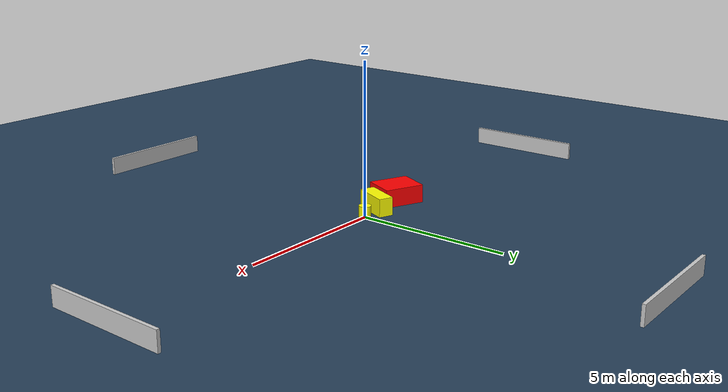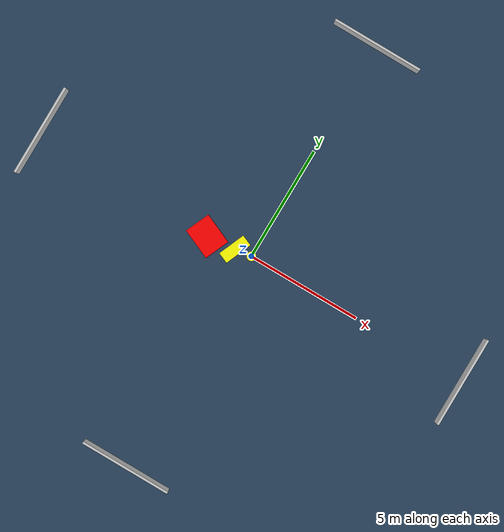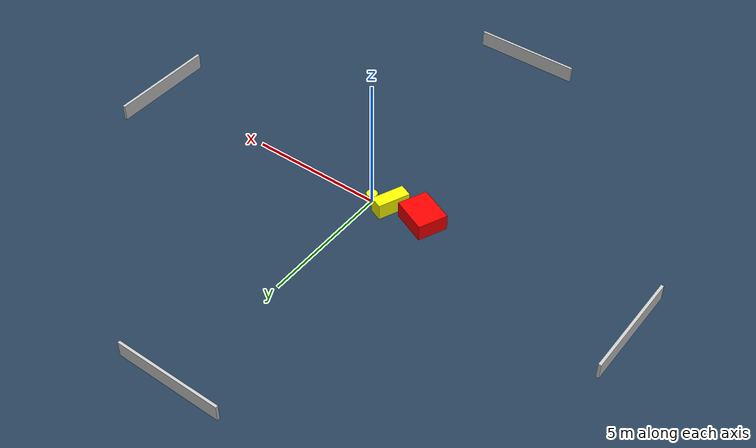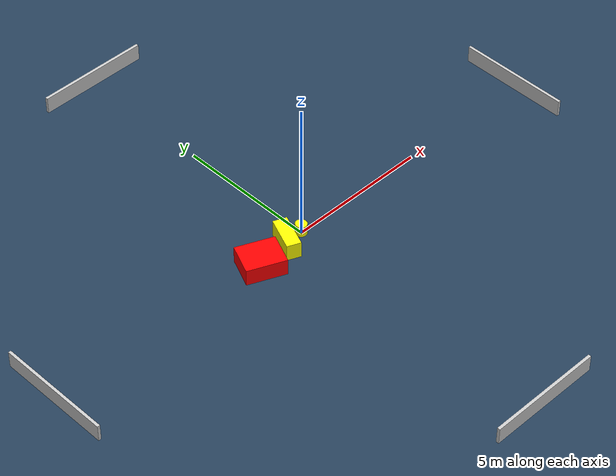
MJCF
<?xml version="1.0" ?>
<mujoco model="generated_environment">
  <option timestep="0.01" integrator="RK4" cone="elliptic"/>
  <default>
    <geom density="1"/>
  </default>
  <asset>
    <texture builtin="gradient" height="3072" name="skybox" rgb1="0.3 0.5 0.7" rgb2="0 0 0" type="skybox" width="512"/>
    <texture builtin="checker" height="300" name="groundplane" rgb1="0.2 0.3 0.4" rgb2="0.1 0.2 0.3" type="2d" width="300"/>
    <material name="groundplane" reflectance="0.2" texrepeat="5 5" texture="groundplane"/>
  </asset>
  <worldbody>
    <light dir="0 0 -1" directional="true" pos="0 0 1.5"/>
    <geom condim="3" friction="0.5 0.005 0.001" material="groundplane" name="floor" pos="0 0 0" size="0 0 0.05" type="plane"/>
    <body name="walls">
      <geom name="wall_1" condim="4" pos="-10.0 0.0 0.3" rgba="0.800000011920929 0.800000011920929 0.800000011920929 1.0" size="0.05 2.0 0.3" type="box"/>
      <geom name="wall_2" condim="4" pos="10.0 0.0 0.3" rgba="0.800000011920929 0.800000011920929 0.800000011920929 1.0" size="0.05 2.0 0.3" type="box"/>
      <geom name="wall_3" condim="4" pos="0.0 -10.0 0.3" rgba="0.800000011920929 0.800000011920929 0.800000011920929 1.0" size="2.0 0.05 0.3" type="box"/>
      <geom name="wall_4" condim="4" pos="0.0 10.0 0.3" rgba="0.800000011920929 0.800000011920929 0.800000011920929 1.0" size="2.0 0.05 0.3" type="box"/>
    </body>
    <body name="robot">
      <joint name="joint_x" type="slide" pos="0 0 0" axis="1 0 0"/>
      <joint name="joint_y" type="slide" pos="0 0 0" axis="0 1 0"/>
      <geom name="robot" type="cylinder" pos="0.0 0.0 0.2" size="0.2 0.2 0.0" mass="5.0" friction="1.0 0.005 0.0001" condim="4" rgba="1.0 1.0 0.0 1.0"/>
    </body>
    <body name="obstacle_1_movable">
      <geom name="obstacle_1_movable" condim="4" pos="-0.7223995897898233 -0.09979191612267063 0.3" euler="0 0 67.36398254852361" friction="0.0 0.005 0.001" rgba="1.0 1.0 0.0 1.0" size="0.6067701618544409 0.24361894266135778 0.3" type="box" mass="0.1"/>
      <joint type="free"/>
    </body>
    <body name="obstacle_2_static">
      <geom name="obstacle_2_static" condim="4" pos="-1.9626011595697175 -0.22775154234965786 0.3" euler="0 0 66.61336104597486" friction="0.0 0.005 0.001" rgba="1.0 0.0 0.0 1.0" size="0.5560427625093094 0.6824125441798466 0.3" type="box"/>
    </body>
  </worldbody>
  <actuator>
    <motor name="actuator_x" joint="joint_x" gear="1" ctrlrange="-1 1"/>
    <motor name="actuator_y" joint="joint_y" gear="1" ctrlrange="-1 1"/>
  </actuator>
</mujoco>
